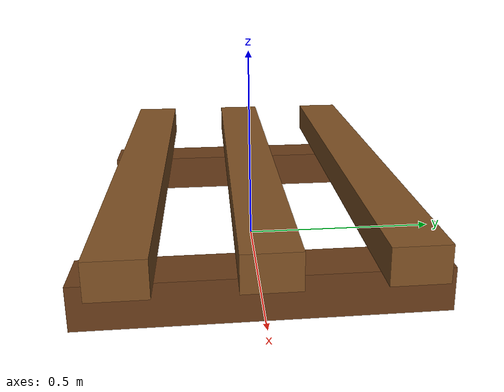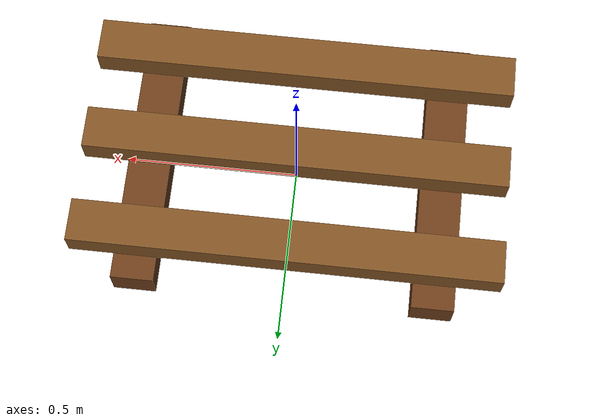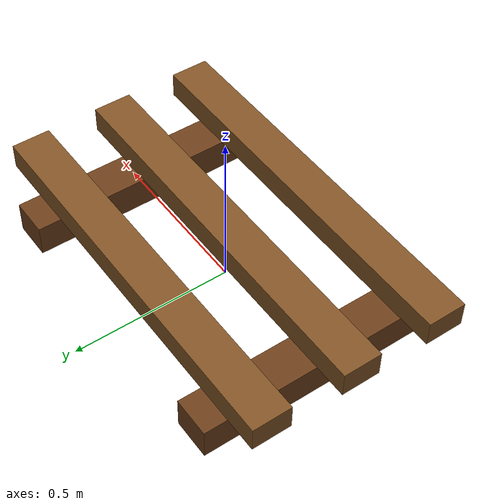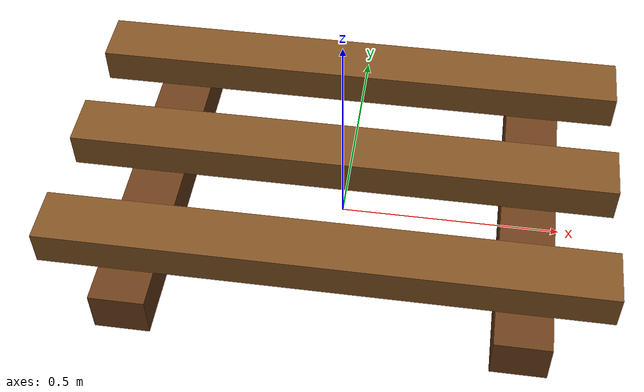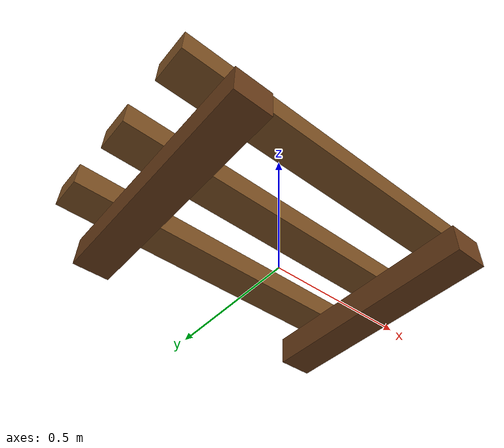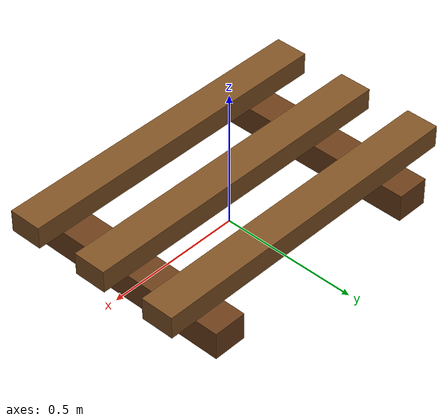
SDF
<?xml version="1.0"?>
<sdf version="1.11">
  <model name="warehouse_pallet">
    <static>true</static>
    <link name="link">
      <collision name="collision"><pose>0 0 0.09 0 0 0</pose><geometry><box><size>1.2 0.8 0.18</size></box></geometry></collision>
      <visual name="deck_front"><pose>0 -0.28 0.18 0 0 0</pose><geometry><box><size>1.2 0.12 0.08</size></box></geometry><material><ambient>0.50 0.32 0.14 1</ambient><diffuse>0.50 0.32 0.14 1</diffuse></material></visual>
      <visual name="deck_mid"><pose>0 0 0.18 0 0 0</pose><geometry><box><size>1.2 0.12 0.08</size></box></geometry><material><ambient>0.50 0.32 0.14 1</ambient><diffuse>0.50 0.32 0.14 1</diffuse></material></visual>
      <visual name="deck_back"><pose>0 0.28 0.18 0 0 0</pose><geometry><box><size>1.2 0.12 0.08</size></box></geometry><material><ambient>0.50 0.32 0.14 1</ambient><diffuse>0.50 0.32 0.14 1</diffuse></material></visual>
      <visual name="runner_left"><pose>-0.42 0 0.06 0 0 0</pose><geometry><box><size>0.12 0.8 0.10</size></box></geometry><material><ambient>0.42 0.24 0.10 1</ambient><diffuse>0.42 0.24 0.10 1</diffuse></material></visual>
      <visual name="runner_right"><pose>0.42 0 0.06 0 0 0</pose><geometry><box><size>0.12 0.8 0.10</size></box></geometry><material><ambient>0.42 0.24 0.10 1</ambient><diffuse>0.42 0.24 0.10 1</diffuse></material></visual>
    </link>
  </model>
</sdf>
